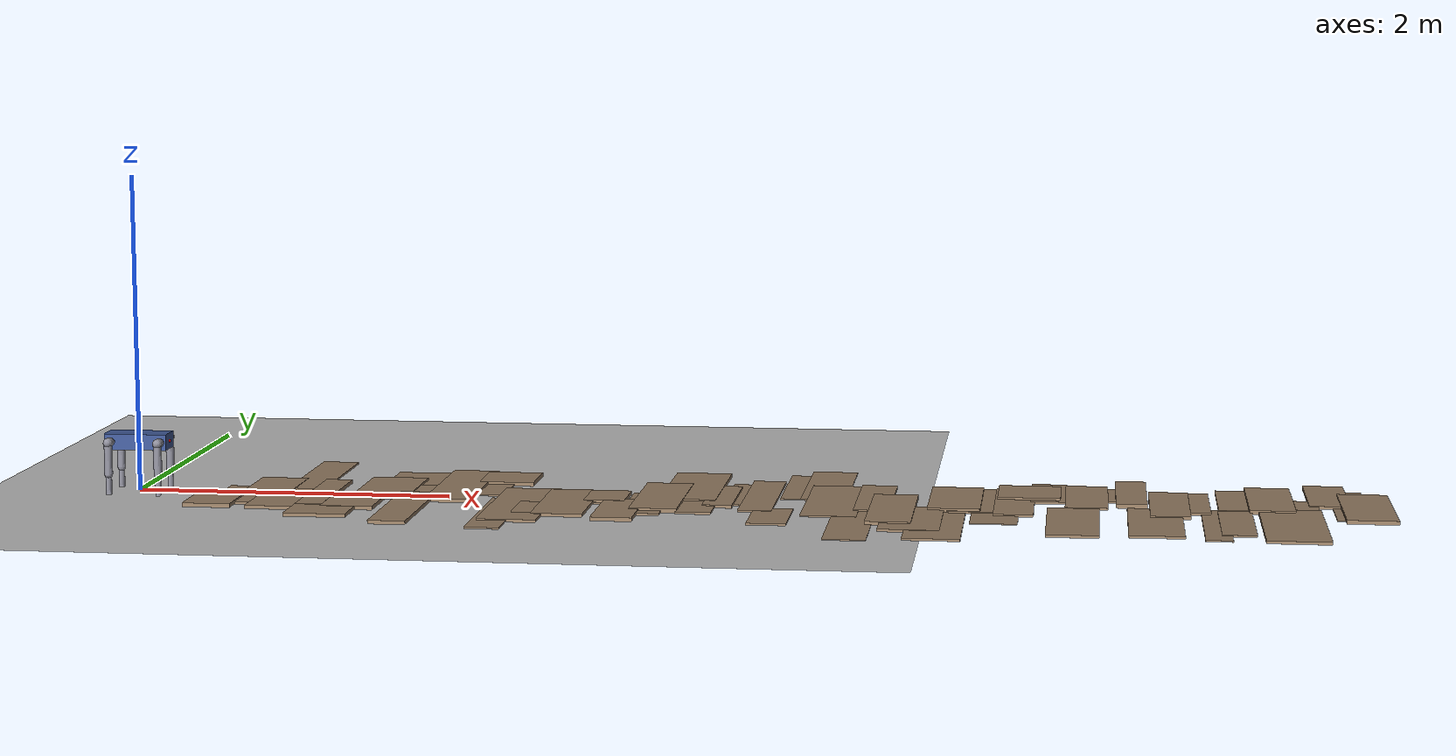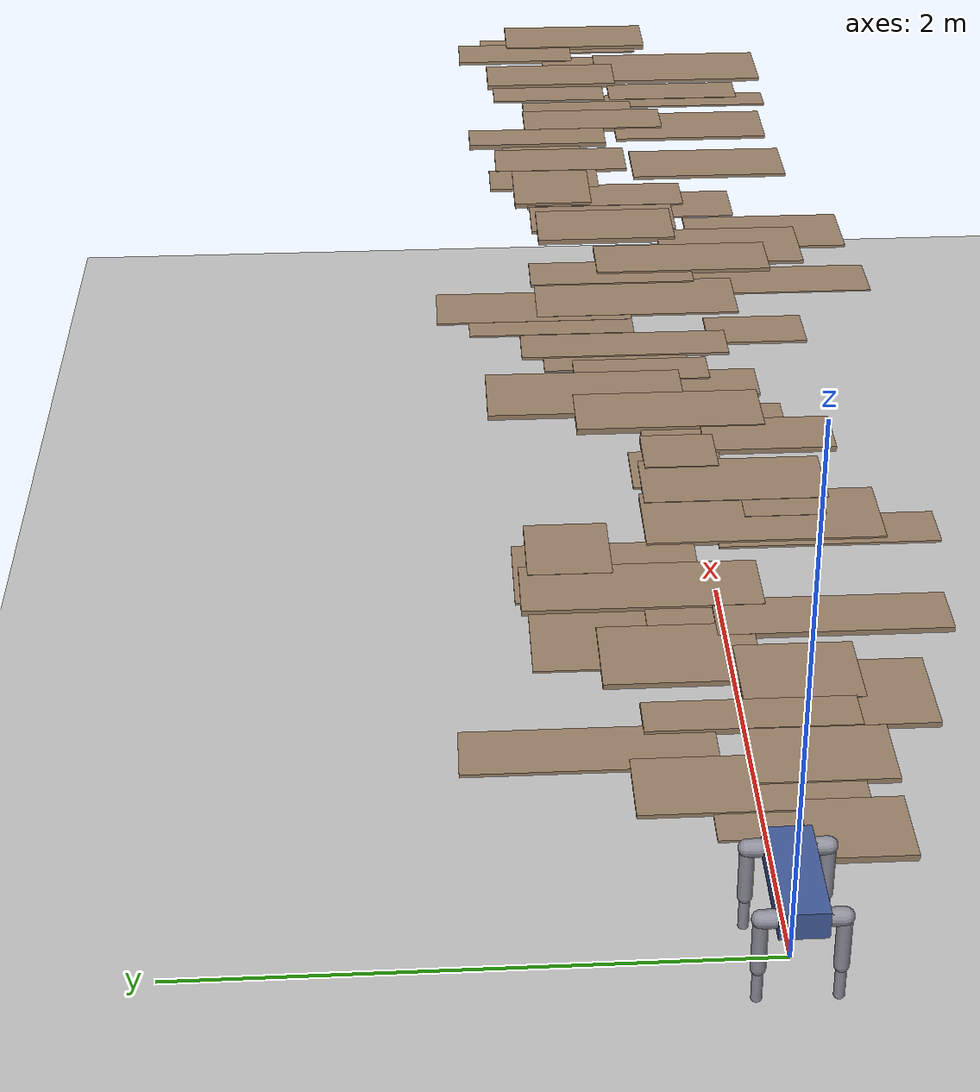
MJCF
<mujoco model="quadbook_rough">
  <!-- Chapter 13: rough terrain that includes the flat-ground model as is and lays down slabs of random height (0.5~3 cm) -->
  <include file="quadruped.xml"/>
  <worldbody>
    <geom name="rock0" type="box" pos="0.575 -0.316 0.0125" size="0.150 0.183 0.0125" rgba="0.6 0.5 0.4 1" contype="1" conaffinity="1"/>
    <geom name="rock1" type="box" pos="0.716 -0.025 0.0045" size="0.168 0.190 0.0045" rgba="0.6 0.5 0.4 1" contype="1" conaffinity="1"/>
    <geom name="rock2" type="box" pos="0.833 0.020 0.0079" size="0.150 0.408 0.0079" rgba="0.6 0.5 0.4 1" contype="1" conaffinity="1"/>
    <geom name="rock3" type="box" pos="0.987 -0.259 0.0106" size="0.164 0.252 0.0106" rgba="0.6 0.5 0.4 1" contype="1" conaffinity="1"/>
    <geom name="rock4" type="box" pos="1.050 0.568 0.0062" size="0.118 0.462 0.0062" rgba="0.6 0.5 0.4 1" contype="1" conaffinity="1"/>
    <geom name="rock5" type="box" pos="1.205 -0.034 0.0122" size="0.084 0.397 0.0122" rgba="0.6 0.5 0.4 1" contype="1" conaffinity="1"/>
    <geom name="rock6" type="box" pos="1.312 -0.491 0.0108" size="0.192 0.223 0.0108" rgba="0.6 0.5 0.4 1" contype="1" conaffinity="1"/>
    <geom name="rock7" type="box" pos="1.448 -0.242 0.0118" size="0.167 0.227 0.0118" rgba="0.6 0.5 0.4 1" contype="1" conaffinity="1"/>
    <geom name="rock8" type="box" pos="1.580 0.189 0.0110" size="0.178 0.300 0.0110" rgba="0.6 0.5 0.4 1" contype="1" conaffinity="1"/>
    <geom name="rock9" type="box" pos="1.696 0.454 0.0038" size="0.182 0.288 0.0038" rgba="0.6 0.5 0.4 1" contype="1" conaffinity="1"/>
    <geom name="rock10" type="box" pos="1.799 -0.424 0.0112" size="0.115 0.455 0.0112" rgba="0.6 0.5 0.4 1" contype="1" conaffinity="1"/>
    <geom name="rock11" type="box" pos="1.907 0.074 0.0075" size="0.154 0.219 0.0075" rgba="0.6 0.5 0.4 1" contype="1" conaffinity="1"/>
    <geom name="rock12" type="box" pos="2.021 0.296 0.0119" size="0.148 0.472 0.0119" rgba="0.6 0.5 0.4 1" contype="1" conaffinity="1"/>
    <geom name="rock13" type="box" pos="2.142 0.421 0.0046" size="0.196 0.368 0.0046" rgba="0.6 0.5 0.4 1" contype="1" conaffinity="1"/>
    <geom name="rock14" type="box" pos="2.286 0.565 0.0123" size="0.175 0.169 0.0123" rgba="0.6 0.5 0.4 1" contype="1" conaffinity="1"/>
    <geom name="rock15" type="box" pos="2.392 -0.498 0.0049" size="0.106 0.451 0.0049" rgba="0.6 0.5 0.4 1" contype="1" conaffinity="1"/>
    <geom name="rock16" type="box" pos="2.498 -0.244 0.0087" size="0.182 0.488 0.0087" rgba="0.6 0.5 0.4 1" contype="1" conaffinity="1"/>
    <geom name="rock17" type="box" pos="2.652 -0.344 0.0093" size="0.165 0.168 0.0093" rgba="0.6 0.5 0.4 1" contype="1" conaffinity="1"/>
    <geom name="rock18" type="box" pos="2.771 -0.158 0.0099" size="0.160 0.384 0.0099" rgba="0.6 0.5 0.4 1" contype="1" conaffinity="1"/>
    <geom name="rock19" type="box" pos="2.881 0.066 0.0050" size="0.139 0.194 0.0050" rgba="0.6 0.5 0.4 1" contype="1" conaffinity="1"/>
    <geom name="rock20" type="box" pos="2.999 0.043 0.0122" size="0.127 0.157 0.0122" rgba="0.6 0.5 0.4 1" contype="1" conaffinity="1"/>
    <geom name="rock21" type="box" pos="3.122 -0.354 0.0118" size="0.127 0.283 0.0118" rgba="0.6 0.5 0.4 1" contype="1" conaffinity="1"/>
    <geom name="rock22" type="box" pos="3.265 -0.128 0.0069" size="0.122 0.318 0.0069" rgba="0.6 0.5 0.4 1" contype="1" conaffinity="1"/>
    <geom name="rock23" type="box" pos="3.336 0.056 0.0140" size="0.148 0.410 0.0140" rgba="0.6 0.5 0.4 1" contype="1" conaffinity="1"/>
    <geom name="rock24" type="box" pos="3.507 0.411 0.0118" size="0.178 0.437 0.0118" rgba="0.6 0.5 0.4 1" contype="1" conaffinity="1"/>
    <geom name="rock25" type="box" pos="3.585 -0.022 0.0068" size="0.111 0.350 0.0068" rgba="0.6 0.5 0.4 1" contype="1" conaffinity="1"/>
    <geom name="rock26" type="box" pos="3.709 0.142 0.0098" size="0.093 0.305 0.0098" rgba="0.6 0.5 0.4 1" contype="1" conaffinity="1"/>
    <geom name="rock27" type="box" pos="3.833 0.248 0.0036" size="0.100 0.329 0.0036" rgba="0.6 0.5 0.4 1" contype="1" conaffinity="1"/>
    <geom name="rock28" type="box" pos="3.954 0.198 0.0067" size="0.104 0.476 0.0067" rgba="0.6 0.5 0.4 1" contype="1" conaffinity="1"/>
    <geom name="rock29" type="box" pos="4.065 -0.424 0.0060" size="0.121 0.229 0.0060" rgba="0.6 0.5 0.4 1" contype="1" conaffinity="1"/>
    <geom name="rock30" type="box" pos="4.202 0.524 0.0041" size="0.130 0.384 0.0041" rgba="0.6 0.5 0.4 1" contype="1" conaffinity="1"/>
    <geom name="rock31" type="box" pos="4.343 0.600 0.0043" size="0.144 0.458 0.0043" rgba="0.6 0.5 0.4 1" contype="1" conaffinity="1"/>
    <geom name="rock32" type="box" pos="4.413 0.106 0.0047" size="0.172 0.478 0.0047" rgba="0.6 0.5 0.4 1" contype="1" conaffinity="1"/>
    <geom name="rock33" type="box" pos="4.562 -0.589 0.0033" size="0.130 0.447 0.0033" rgba="0.6 0.5 0.4 1" contype="1" conaffinity="1"/>
    <geom name="rock34" type="box" pos="4.664 0.203 0.0076" size="0.112 0.396 0.0076" rgba="0.6 0.5 0.4 1" contype="1" conaffinity="1"/>
    <geom name="rock35" type="box" pos="4.788 -0.154 0.0121" size="0.139 0.424 0.0121" rgba="0.6 0.5 0.4 1" contype="1" conaffinity="1"/>
    <geom name="rock36" type="box" pos="4.921 -0.408 0.0080" size="0.185 0.348 0.0080" rgba="0.6 0.5 0.4 1" contype="1" conaffinity="1"/>
    <geom name="rock37" type="box" pos="5.068 -0.599 0.0068" size="0.172 0.390 0.0068" rgba="0.6 0.5 0.4 1" contype="1" conaffinity="1"/>
    <geom name="rock38" type="box" pos="5.164 0.196 0.0135" size="0.162 0.342 0.0135" rgba="0.6 0.5 0.4 1" contype="1" conaffinity="1"/>
    <geom name="rock39" type="box" pos="5.284 0.200 0.0065" size="0.160 0.365 0.0065" rgba="0.6 0.5 0.4 1" contype="1" conaffinity="1"/>
    <geom name="rock40" type="box" pos="5.417 -0.024 0.0028" size="0.144 0.450 0.0028" rgba="0.6 0.5 0.4 1" contype="1" conaffinity="1"/>
    <geom name="rock41" type="box" pos="5.528 0.172 0.0074" size="0.123 0.402 0.0074" rgba="0.6 0.5 0.4 1" contype="1" conaffinity="1"/>
    <geom name="rock42" type="box" pos="5.615 0.440 0.0135" size="0.195 0.197 0.0135" rgba="0.6 0.5 0.4 1" contype="1" conaffinity="1"/>
    <geom name="rock43" type="box" pos="5.737 0.473 0.0075" size="0.112 0.284 0.0075" rgba="0.6 0.5 0.4 1" contype="1" conaffinity="1"/>
    <geom name="rock44" type="box" pos="5.890 -0.406 0.0086" size="0.159 0.402 0.0086" rgba="0.6 0.5 0.4 1" contype="1" conaffinity="1"/>
    <geom name="rock45" type="box" pos="5.971 0.373 0.0079" size="0.132 0.347 0.0079" rgba="0.6 0.5 0.4 1" contype="1" conaffinity="1"/>
    <geom name="rock46" type="box" pos="6.107 0.464 0.0052" size="0.145 0.209 0.0052" rgba="0.6 0.5 0.4 1" contype="1" conaffinity="1"/>
    <geom name="rock47" type="box" pos="6.247 0.482 0.0135" size="0.096 0.369 0.0135" rgba="0.6 0.5 0.4 1" contype="1" conaffinity="1"/>
    <geom name="rock48" type="box" pos="6.384 -0.360 0.0077" size="0.166 0.408 0.0077" rgba="0.6 0.5 0.4 1" contype="1" conaffinity="1"/>
    <geom name="rock49" type="box" pos="6.477 0.166 0.0109" size="0.122 0.378 0.0109" rgba="0.6 0.5 0.4 1" contype="1" conaffinity="1"/>
    <geom name="rock50" type="box" pos="6.605 0.237 0.0089" size="0.120 0.302 0.0089" rgba="0.6 0.5 0.4 1" contype="1" conaffinity="1"/>
    <geom name="rock51" type="box" pos="6.745 -0.375 0.0044" size="0.081 0.448 0.0044" rgba="0.6 0.5 0.4 1" contype="1" conaffinity="1"/>
    <geom name="rock52" type="box" pos="6.869 -0.316 0.0058" size="0.104 0.360 0.0058" rgba="0.6 0.5 0.4 1" contype="1" conaffinity="1"/>
    <geom name="rock53" type="box" pos="6.959 0.385 0.0051" size="0.185 0.312 0.0051" rgba="0.6 0.5 0.4 1" contype="1" conaffinity="1"/>
    <geom name="rock54" type="box" pos="7.098 0.362 0.0139" size="0.140 0.363 0.0139" rgba="0.6 0.5 0.4 1" contype="1" conaffinity="1"/>
    <geom name="rock55" type="box" pos="7.204 -0.372 0.0088" size="0.191 0.468 0.0088" rgba="0.6 0.5 0.4 1" contype="1" conaffinity="1"/>
    <geom name="rock56" type="box" pos="7.291 0.196 0.0066" size="0.096 0.199 0.0066" rgba="0.6 0.5 0.4 1" contype="1" conaffinity="1"/>
    <geom name="rock57" type="box" pos="7.458 0.551 0.0090" size="0.126 0.328 0.0090" rgba="0.6 0.5 0.4 1" contype="1" conaffinity="1"/>
    <geom name="rock58" type="box" pos="7.580 0.296 0.0033" size="0.106 0.454 0.0033" rgba="0.6 0.5 0.4 1" contype="1" conaffinity="1"/>
    <geom name="rock59" type="box" pos="7.680 0.189 0.0122" size="0.156 0.407 0.0122" rgba="0.6 0.5 0.4 1" contype="1" conaffinity="1"/>
  </worldbody>
</mujoco>

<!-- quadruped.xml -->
<mujoco model="quadbook_quadruped">

  <compiler angle="radian" autolimits="true"/>
  <option timestep="0.002" integrator="implicitfast" solver="Newton" gravity="0 0 -9.81"/>

  <visual>
    <global offwidth="1600" offheight="1000"/>
    <quality shadowsize="4096"/>
  </visual>

  <default>
    <!-- Shared by all joints: damping and armature inertia (motor rotor). Both contribute a lot to numerical stability -->
    <joint damping="0.2" armature="0.01" frictionloss="0.02"/>
    <geom condim="3" friction="1.0 0.005 0.0001" solref="0.02 1" solimp="0.9 0.95 0.001"/>
    <motor ctrlrange="-12 12" gear="1"/>

    <default class="torso">
      <geom type="box" rgba="0.25 0.35 0.6 1"/>
    </default>
    <default class="leg">
      <!-- Leg links get separate contype/conaffinity so they never collide with each other: only the feet touch the floor -->
      <geom type="capsule" rgba="0.55 0.55 0.6 1" contype="0" conaffinity="0"/>
      <joint type="hinge"/>
    </default>
    <default class="abduction">
      <joint axis="1 0 0" range="-0.8 0.8"/>
    </default>
    <default class="hip">
      <joint axis="0 1 0" range="-1.2 2.4"/>
    </default>
    <default class="knee">
      <joint axis="0 1 0" range="-2.6 -0.3"/>
    </default>
    <default class="foot">
      <geom type="sphere" size="0.02" rgba="0.15 0.15 0.15 1" contype="1" conaffinity="1" friction="1.0 0.005 0.0001"/>
    </default>
  </default>

  <asset>
    <texture name="grid" type="2d" builtin="checker" rgb1="0.85 0.85 0.85" rgb2="0.65 0.65 0.65" width="300" height="300"/>
    <material name="grid" texture="grid" texrepeat="10 10" reflectance="0.05"/>
    <texture type="skybox" builtin="gradient" rgb1="0.95 0.95 1" rgb2="0.6 0.7 0.9" width="32" height="512"/>
  </asset>

  <worldbody>
    <light pos="1 1 3" dir="-0.3 -0.3 -1" diffuse="0.9 0.9 0.9" castshadow="true"/>
    <geom name="floor" type="plane" size="5 5 0.1" material="grid" contype="1" conaffinity="1"/>
    <camera name="side" pos="1.6 -1.6 0.7" xyaxes="0.7 0.7 0 -0.25 0.25 0.94"/>
    <camera name="front" pos="1.8 0 0.5" xyaxes="0 1 0 -0.25 0 0.97"/>

    <body name="torso" pos="0 0 0.32">
      <freejoint name="root"/>
      <geom name="torso_geom" class="torso" size="0.2 0.08 0.05" mass="4.0"/>
      <site name="imu" pos="0 0 0" size="0.01"/>
      <site name="torso_front" pos="0.2 0 0" size="0.01" rgba="1 0 0 1"/>

      <!-- ===== Left front leg LF ===== -->
      <body name="LF_hip" pos="0.16 0.09 0">
        <joint name="LF_abduction" class="abduction"/>
        <geom class="leg" fromto="0 0 0 0 0.04 0" size="0.03" mass="0.2"/>
        <body name="LF_thigh" pos="0 0.04 0">
          <joint name="LF_hip" class="hip"/>
          <geom class="leg" fromto="0 0 0 0 0 -0.2" size="0.025" mass="0.6"/>
          <body name="LF_calf" pos="0 0 -0.2">
            <joint name="LF_knee" class="knee"/>
            <geom class="leg" fromto="0 0 0 0 0 -0.2" size="0.018" mass="0.3"/>
            <geom name="LF_foot" class="foot" pos="0 0 -0.2" mass="0.05"/>
            <site name="LF_foot_site" pos="0 0 -0.2" size="0.022"/>
          </body>
        </body>
      </body>

      <!-- ===== Right front leg RF ===== -->
      <body name="RF_hip" pos="0.16 -0.09 0">
        <joint name="RF_abduction" class="abduction"/>
        <geom class="leg" fromto="0 0 0 0 -0.04 0" size="0.03" mass="0.2"/>
        <body name="RF_thigh" pos="0 -0.04 0">
          <joint name="RF_hip" class="hip"/>
          <geom class="leg" fromto="0 0 0 0 0 -0.2" size="0.025" mass="0.6"/>
          <body name="RF_calf" pos="0 0 -0.2">
            <joint name="RF_knee" class="knee"/>
            <geom class="leg" fromto="0 0 0 0 0 -0.2" size="0.018" mass="0.3"/>
            <geom name="RF_foot" class="foot" pos="0 0 -0.2" mass="0.05"/>
            <site name="RF_foot_site" pos="0 0 -0.2" size="0.022"/>
          </body>
        </body>
      </body>

      <!-- ===== Left hind leg LH ===== -->
      <body name="LH_hip" pos="-0.16 0.09 0">
        <joint name="LH_abduction" class="abduction"/>
        <geom class="leg" fromto="0 0 0 0 0.04 0" size="0.03" mass="0.2"/>
        <body name="LH_thigh" pos="0 0.04 0">
          <joint name="LH_hip" class="hip"/>
          <geom class="leg" fromto="0 0 0 0 0 -0.2" size="0.025" mass="0.6"/>
          <body name="LH_calf" pos="0 0 -0.2">
            <joint name="LH_knee" class="knee"/>
            <geom class="leg" fromto="0 0 0 0 0 -0.2" size="0.018" mass="0.3"/>
            <geom name="LH_foot" class="foot" pos="0 0 -0.2" mass="0.05"/>
            <site name="LH_foot_site" pos="0 0 -0.2" size="0.022"/>
          </body>
        </body>
      </body>

      <!-- ===== Right hind leg RH ===== -->
      <body name="RH_hip" pos="-0.16 -0.09 0">
        <joint name="RH_abduction" class="abduction"/>
        <geom class="leg" fromto="0 0 0 0 -0.04 0" size="0.03" mass="0.2"/>
        <body name="RH_thigh" pos="0 -0.04 0">
          <joint name="RH_hip" class="hip"/>
          <geom class="leg" fromto="0 0 0 0 0 -0.2" size="0.025" mass="0.6"/>
          <body name="RH_calf" pos="0 0 -0.2">
            <joint name="RH_knee" class="knee"/>
            <geom class="leg" fromto="0 0 0 0 0 -0.2" size="0.018" mass="0.3"/>
            <geom name="RH_foot" class="foot" pos="0 0 -0.2" mass="0.05"/>
            <site name="RH_foot_site" pos="0 0 -0.2" size="0.022"/>
          </body>
        </body>
      </body>
    </body>
  </worldbody>

  <!-- Actuators: one torque motor per joint. Order is LF, RF, LH, RH × (abduction, hip, knee) -->
  <actuator>
    <motor name="LF_abduction" joint="LF_abduction"/>
    <motor name="LF_hip" joint="LF_hip"/>
    <motor name="LF_knee" joint="LF_knee"/>
    <motor name="RF_abduction" joint="RF_abduction"/>
    <motor name="RF_hip" joint="RF_hip"/>
    <motor name="RF_knee" joint="RF_knee"/>
    <motor name="LH_abduction" joint="LH_abduction"/>
    <motor name="LH_hip" joint="LH_hip"/>
    <motor name="LH_knee" joint="LH_knee"/>
    <motor name="RH_abduction" joint="RH_abduction"/>
    <motor name="RH_hip" joint="RH_hip"/>
    <motor name="RH_knee" joint="RH_knee"/>
  </actuator>

  <!-- Sensors: 12 joints × (position, velocity), torso IMU (orientation, angular velocity, acceleration), 4 foot contacts -->
  <sensor>
    <jointpos name="LF_abduction_pos" joint="LF_abduction"/>
    <jointpos name="LF_hip_pos" joint="LF_hip"/>
    <jointpos name="LF_knee_pos" joint="LF_knee"/>
    <jointpos name="RF_abduction_pos" joint="RF_abduction"/>
    <jointpos name="RF_hip_pos" joint="RF_hip"/>
    <jointpos name="RF_knee_pos" joint="RF_knee"/>
    <jointpos name="LH_abduction_pos" joint="LH_abduction"/>
    <jointpos name="LH_hip_pos" joint="LH_hip"/>
    <jointpos name="LH_knee_pos" joint="LH_knee"/>
    <jointpos name="RH_abduction_pos" joint="RH_abduction"/>
    <jointpos name="RH_hip_pos" joint="RH_hip"/>
    <jointpos name="RH_knee_pos" joint="RH_knee"/>
    <jointvel name="LF_abduction_vel" joint="LF_abduction"/>
    <jointvel name="LF_hip_vel" joint="LF_hip"/>
    <jointvel name="LF_knee_vel" joint="LF_knee"/>
    <jointvel name="RF_abduction_vel" joint="RF_abduction"/>
    <jointvel name="RF_hip_vel" joint="RF_hip"/>
    <jointvel name="RF_knee_vel" joint="RF_knee"/>
    <jointvel name="LH_abduction_vel" joint="LH_abduction"/>
    <jointvel name="LH_hip_vel" joint="LH_hip"/>
    <jointvel name="LH_knee_vel" joint="LH_knee"/>
    <jointvel name="RH_abduction_vel" joint="RH_abduction"/>
    <jointvel name="RH_hip_vel" joint="RH_hip"/>
    <jointvel name="RH_knee_vel" joint="RH_knee"/>
    <framequat name="torso_quat" objtype="site" objname="imu"/>
    <gyro name="torso_gyro" site="imu"/>
    <accelerometer name="torso_acc" site="imu"/>
    <touch name="LF_touch" site="LF_foot_site"/>
    <touch name="RF_touch" site="RF_foot_site"/>
    <touch name="LH_touch" site="LH_foot_site"/>
    <touch name="RH_touch" site="RH_foot_site"/>
  </sensor>

  <!-- Keyframe: standing pose. qpos = torso position 3 + orientation quaternion 4 + joints 12 -->
  <keyframe>
    <key name="stand"
         qpos="0 0 0.31  1 0 0 0
               0 0.8 -1.5   0 0.8 -1.5   0 0.8 -1.5   0 0.8 -1.5"/>
  </keyframe>
</mujoco>
